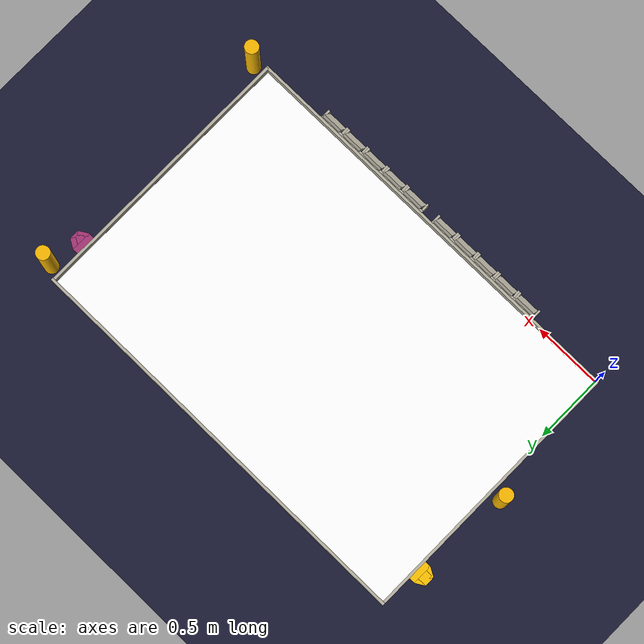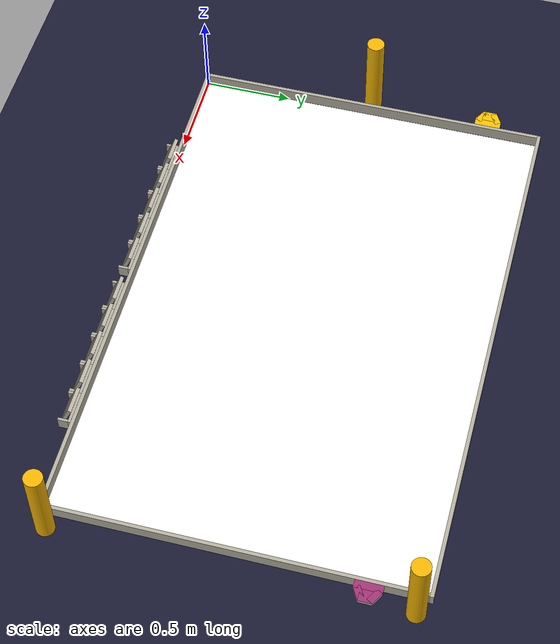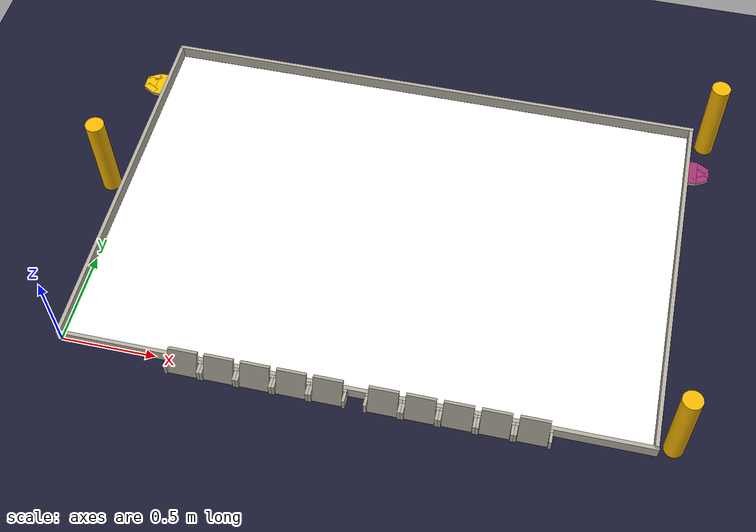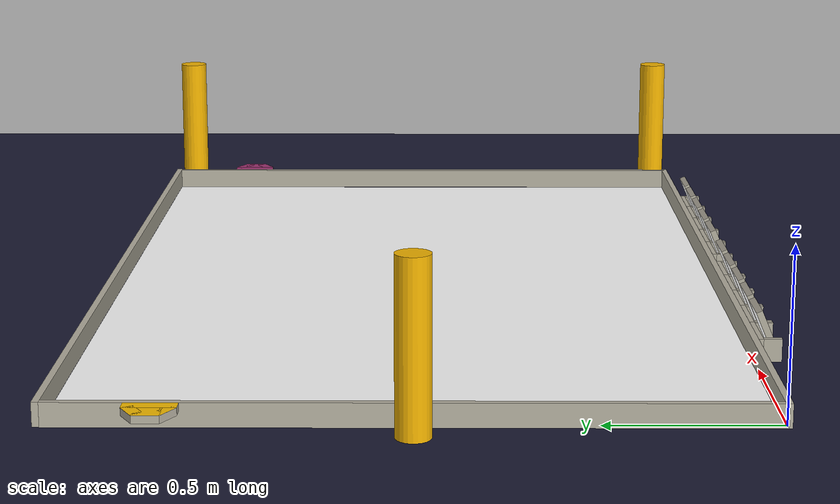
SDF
<sdf version="1.4">
 <world name="eurobot_2022">
  <plugin filename="gz-sim-physics-system" name="gz::sim::systems::Physics"/>
  <plugin filename="gz-sim-user-commands-system" name="gz::sim::systems::UserCommands"/>
  <plugin filename="gz-sim-scene-broadcaster-system" name="gz::sim::systems::SceneBroadcaster"/>
  <physics name="1ms" type="ignored">
   <max_step_size>0.01</max_step_size>
   <real_time_factor>1.0</real_time_factor>
  </physics>
  <plugin filename="gz-sim-sensors-system" name="gz::sim::systems::Sensors">
   <render_engine>ogre2</render_engine>
  </plugin>
  <plugin filename="gz-sim-imu-system" name="gz::sim::systems::Imu"/>
  <plugin filename="gz-sim-contact-system" name="gz::sim::systems::Contact"/>
  <scene><ambient>0.4 0.4 0.4 1</ambient><shadows>false</shadows></scene>
  <light type="directional" name="light1">
   <pose>1.5 1 50 0 0 0</pose>
   <diffuse>0.5 0.5 0.5 1</diffuse>
   <specular>1 1 1 0</specular>
   <direction>1 0 0.5</direction>
  </light>
  <light type="directional" name="light2">
   <pose>1.5 1 50 0 0 0</pose>
   <diffuse>0.5 0.5 0.5 1</diffuse>
   <specular>1 1 1 0</specular>
   <direction>1 0 -0.5</direction>
  </light>
  <model name="ground_plane">
   <static>true</static>
   <link name="ground_link">
    <collision name="collision1"><geometry><plane><normal>0 0 1</normal></plane></geometry></collision>
    <visual name="visual1">
     <geometry><plane><normal>0 0 1</normal><size>100 100</size></plane></geometry>
     <material>
      <ambient>0.1 0.1 0.1 0</ambient>
      <diffuse>0.1 0.1 0.2 0</diffuse>
      <specular>0 0 0 0</specular>
      <emissive>0 0 0 0</emissive>
     </material>
    </visual>
   </link>
  </model>
  <include>
   <name>playground</name>
   <uri>model://eurobot_playground_22</uri>
   <pose>1.5 1.0 -0.001 0 0 0</pose>
  </include>
  <include>
   <static>true</static>
   <name>sample_support_yellow</name>
   <uri>model://eurobot_22/sample_support_yellow</uri>
   <pose>-0.0415 1.7 0.059 0 0 3.14159265</pose>
  </include>
  <include>
   <static>true</static>
   <name>sample_support_purple</name>
   <uri>model://eurobot_22/sample_support_purple</uri>
   <pose>3.0415 1.7 0.059 0 0 0</pose>
  </include>
  <include>
   <static>false</static>
   <name>excavation_square_yellow_1</name>
   <uri>model://eurobot_22/excavation_square_yellow</uri>
   <pose>0.6675 -0.0176 0.035 0 0 0</pose>
  </include>
  <include>
   <static>false</static>
   <name>excavation_square_yellow_2</name>
   <uri>model://eurobot_22/excavation_square_yellow</uri>
   <pose>0.8525 -0.0176 0.035 0 0 0</pose>
  </include>
  <include>
   <static>false</static>
   <name>excavation_square_x_1</name>
   <uri>model://eurobot_22/excavation_square_x</uri>
   <pose>1.0375 -0.0176 0.035 0 0 0</pose>
  </include>
  <include>
   <static>false</static>
   <name>excavation_square_purple_1</name>
   <uri>model://eurobot_22/excavation_square_purple</uri>
   <pose>1.2225 -0.0176 0.035 0 0 0</pose>
  </include>
  <include>
   <static>false</static>
   <name>excavation_square_yellow_3</name>
   <uri>model://eurobot_22/excavation_square_yellow</uri>
   <pose>1.4075 -0.0176 0.035 0 0 0</pose>
  </include>
  <include>
   <static>false</static>
   <name>excavation_square_yellow_4</name>
   <uri>model://eurobot_22/excavation_square_yellow</uri>
   <pose>1.685 -0.0176 0.035 0 0 0</pose>
  </include>
  <include>
   <static>false</static>
   <name>excavation_square_purple_2</name>
   <uri>model://eurobot_22/excavation_square_purple</uri>
   <pose>1.870 -0.0176 0.035 0 0 0</pose>
  </include>
  <include>
   <static>false</static>
   <name>excavation_square_x_2</name>
   <uri>model://eurobot_22/excavation_square_x</uri>
   <pose>2.055 -0.0176 0.035 0 0 0</pose>
  </include>
  <include>
   <static>false</static>
   <name>excavation_square_purple_3</name>
   <uri>model://eurobot_22/excavation_square_purple</uri>
   <pose>2.240 -0.0176 0.035 0 0 0</pose>
  </include>
  <include>
   <static>false</static>
   <name>excavation_square_purple_4</name>
   <uri>model://eurobot_22/excavation_square_purple</uri>
   <pose>2.425 -0.0176 0.035 0 0 0</pose>
  </include>
  <model name="wall1">
   <static>true</static>
   <pose>1.502 0 0.035 0 0 0</pose>
   <link name="body">
    <collision name="collision1"><geometry><box><size>3.04 0.02 0.07</size></box></geometry></collision>
    <visual name="visual1">
     <geometry><box><size>3.04 0.02 0.07</size></box></geometry>
     <material>
      <ambient>0.71 0.69 0.63 1.0</ambient>
      <diffuse>0.71 0.69 0.63 1.0</diffuse>
      <specular>0.1 0.1 0.1 1</specular>
      <emissive>0 0 0 0</emissive>
     </material>
    </visual>
   </link>
  </model>
  <model name="wall2">
   <static>true</static>
   <pose>1.502 2.01 0.035 0 0 0</pose>
   <link name="body">
    <collision name="collision1"><geometry><box><size>3.04 0.02 0.07</size></box></geometry></collision>
    <visual name="visual1">
     <geometry><box><size>3.04 0.02 0.07</size></box></geometry>
     <material>
      <ambient>0.71 0.69 0.63 1.0</ambient>
      <diffuse>0.71 0.69 0.63 1.0</diffuse>
      <specular>0.1 0.1 0.1 1</specular>
      <emissive>0 0 0 0</emissive>
     </material>
    </visual>
   </link>
  </model>
  <model name="wall3">
   <static>true</static>
   <pose>3.01 1.0 0.035 0 0 0</pose>
   <link name="body">
    <collision name="collision1"><geometry><box><size>0.02 2.0 0.07</size></box></geometry></collision>
    <visual name="visual1">
     <geometry><box><size>0.02 2 0.07</size></box></geometry>
     <material>
      <ambient>0.71 0.69 0.63 1.0</ambient>
      <diffuse>0.71 0.69 0.63 1.0</diffuse>
      <specular>0.1 0.1 0.1 1</specular>
      <emissive>0 0 0 0</emissive>
     </material>
    </visual>
   </link>
  </model>
  <model name="wall4">
   <static>true</static>
   <pose>-0.01 1.0 0.035 0 0 0</pose>
   <link name="body">
    <collision name="collision1"><geometry><box><size>0.02 2.0 0.07</size></box></geometry></collision>
    <visual name="visual1">
     <geometry><box><size>0.02 2 0.07</size></box></geometry>
     <material>
      <ambient>0.71 0.69 0.63 1.0</ambient>
      <diffuse>0.71 0.69 0.63 1.0</diffuse>
      <specular>0.1 0.1 0.1 1</specular>
      <emissive>0 0 0 0</emissive>
     </material>
    </visual>
   </link>
  </model>
  <model name="landmark2">
   <pose>-0.094 1.0 0.25 0 0 0</pose>
   <static>true</static>
   <link name="link">
    <collision name="collision">
     <geometry><cylinder><length>0.5</length><radius>0.05</radius></cylinder></geometry>
     <laser_retro>20.0</laser_retro>
    </collision>
    <visual name="visual">
     <geometry><cylinder><length>0.5</length><radius>0.05</radius></cylinder></geometry>
     <material>
      <ambient>0.96 0.71 0.0 1</ambient>
      <diffuse>0.96 0.71 0.0 1</diffuse>
      <specular>0 0 0 0</specular>
      <emissive>0 0 0 0</emissive>
     </material>
    </visual>
   </link>
  </model>
  <model name="landmark4">
   <pose>3.094 0.05 0.25 0 0 0</pose>
   <static>true</static>
   <link name="link">
    <collision name="collision">
     <geometry><cylinder><length>0.5</length><radius>0.05</radius></cylinder></geometry>
     <laser_retro>40.0</laser_retro>
    </collision>
    <visual name="visual">
     <geometry><cylinder><length>0.5</length><radius>0.05</radius></cylinder></geometry>
     <material>
      <ambient>0.96 0.71 0.0 1</ambient>
      <diffuse>0.96 0.71 0.0 1</diffuse>
      <specular>0 0 0 0</specular>
      <emissive>0 0 0 0</emissive>
     </material>
    </visual>
   </link>
  </model>
  <model name="landmark6">
   <pose>3.094 1.95 0.25 0 0 0</pose>
   <static>true</static>
   <link name="link">
    <collision name="collision">
     <geometry><cylinder><length>0.5</length><radius>0.05</radius></cylinder></geometry>
     <laser_retro>60.0</laser_retro>
    </collision>
    <visual name="visual">
     <geometry><cylinder><length>0.5</length><radius>0.05</radius></cylinder></geometry>
     <material>
      <ambient>0.96 0.71 0.0 1</ambient>
      <diffuse>0.96 0.71 0.0 1</diffuse>
      <specular>0 0 0 0</specular>
      <emissive>0 0 0 0</emissive>
     </material>
    </visual>
   </link>
  </model>
 </world>
</sdf>

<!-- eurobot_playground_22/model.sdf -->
<sdf version="1.6">
  <model name="Eurobot Playground Model">
    <static>true</static>
  <link name="plane">
      <collision name="plane_collision">
        <geometry>
          <box>
            <size>3 2 0.0001</size>
          </box>
        </geometry>
      </collision>
      <visual name="plane_visual">
        <geometry>
          <box>
            <size>3 2 0.0001</size>
          </box>
        </geometry>
        <material>
          <ambient>1 1 1 1</ambient>
          <diffuse>1 1 1 1</diffuse>
          <specular>0.1 0.1 0.1 1</specular>
          <pbr>
            <metal>
              <albedo_map>materials/textures/vinyle-table-2022_large.png</albedo_map>
              <roughness>1.0</roughness>
              <metalness>0.0</metalness>
            </metal>
          </pbr>
        </material>
      </visual>
    </link>

  </model>
</sdf>

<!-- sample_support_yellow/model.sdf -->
<sdf version="1.6">
  <model name="sample_support_yellow">
  <static>false</static>
  <link name="base_plate">
      <collision name="base_plate_collision_1">
        <pose>0 0 0 0 0 0</pose>
        <geometry>
          <box><size>0.04295 0.150 0.022</size></box>
        </geometry>
      </collision>
      <collision name="base_plate_collision_2">
        <pose>0.05395 0 0 0 0 0</pose>
        <geometry>
          <box><size>0.06495 0.075 0.022</size></box>
        </geometry>
      </collision>
      <collision name="base_plate_collision_3">
        <pose>0.044575 0.04 0 0 0 2.61799387799</pose>
        <geometry>
          <box><size>0.075 0.0375 0.022</size></box>
        </geometry>
      </collision>
      <collision name="base_plate_collision_4">
        <pose>0.044575 -0.04 0 0 0 -2.61799387799</pose>
        <geometry>
          <box><size>0.075 0.0375 0.022</size></box>
        </geometry>
      </collision>
      <visual name="base_plate_visual_1">
        <pose>0 0 0 0 0 0</pose>
        <geometry>
          <box><size>0.04295 0.150 0.022</size></box>
        </geometry>
        <material>
          <ambient>0.71 0.69 0.63 1.0</ambient>
          <diffuse>0.71 0.69 0.63 1.0</diffuse>
          <specular>0.1 0.1 0.1 1</specular>
          <emissive>0 0 0 0</emissive>
        </material>
      </visual>
      <visual name="base_plate_1_color_cap">
        <pose>0 0 0.011 0 0 0</pose>
        <geometry>
          <box>
            <size>0.04295 0.150 0.0001</size>
          </box>
        </geometry>
       <material>
            <ambient>0.98 0.75 0.00 1</ambient>
            <diffuse>0.98 0.75 0.00 1</diffuse>
            <specular>0.05 0.05 0.05 1</specular>
       </material>
      </visual>
      <visual name="base_plate_visual_2">
        <pose>0.05395 0 0 0 0 0</pose>
        <geometry>
          <box><size>0.06495 0.075 0.022</size></box>
        </geometry>
        <material>
          <ambient>0.71 0.69 0.63 1.0</ambient>
          <diffuse>0.71 0.69 0.63 1.0</diffuse>
          <specular>0.1 0.1 0.1 1</specular>
          <emissive>0 0 0 0</emissive>
        </material>
      </visual>
      <visual name="base_plate_2_color_cap">
        <pose>0.05395 0 0.011 0 0 0</pose>
        <geometry>
          <box>
            <size>0.06495 0.075 0.0001</size>
          </box>
        </geometry>
       <material>
            <ambient>0.98 0.75 0.00 1</ambient>
            <diffuse>0.98 0.75 0.00 1</diffuse>
            <specular>0.05 0.05 0.05 1</specular>
       </material>
      </visual>
      <visual name="base_plate_visual_3">
        <pose>0.044575 0.04 0 0 0 2.61799387799</pose>
        <geometry>
          <box><size>0.075 0.0375 0.022</size></box>
        </geometry>
        <material>
          <ambient>0.71 0.69 0.63 1.0</ambient>
          <diffuse>0.71 0.69 0.63 1.0</diffuse>
          <specular>0.1 0.1 0.1 1</specular>
          <emissive>0 0 0 0</emissive>
        </material>
      </visual>
      <visual name="base_plate_3_color_cap">
        <pose>0.044575 0.04 0.011 0 0 2.61799387799</pose>
        <geometry>
          <box>
            <size>0.075 0.0375 0.0001</size>
          </box>
        </geometry>
       <material>
            <ambient>0.98 0.75 0.00 1</ambient>
            <diffuse>0.98 0.75 0.00 1</diffuse>
            <specular>0.05 0.05 0.05 1</specular>
       </material>
      </visual>
      <visual name="base_plate_visual_4">
        <pose>0.044575 -0.04 0 0 0 -2.61799387799</pose>
        <geometry>
          <box><size>0.075 0.0375 0.022</size></box>
        </geometry>
        <material>
          <ambient>0.71 0.69 0.63 1.0</ambient>
          <diffuse>0.71 0.69 0.63 1.0</diffuse>
          <specular>0.1 0.1 0.1 1</specular>
          <emissive>0 0 0 0</emissive>
        </material>
      </visual>
      <visual name="base_plate_4_color_cap">
        <pose>0.044575 -0.04 0.011 0 0 -2.61799387799</pose>
        <geometry>
          <box>
            <size>0.075 0.0375 0.0001</size>
          </box>
        </geometry>
       <material>
            <ambient>0.98 0.75 0.00 1</ambient>
            <diffuse>0.98 0.75 0.00 1</diffuse>
            <specular>0.05 0.05 0.05 1</specular>
       </material>
      </visual>
      <inertial>
        <mass>0.1</mass>
        <inertia>
          <ixx>0.000703</ixx><ixy>0</ixy><ixz>0</ixz>
          <iyy>0.000703</iyy><iyz>0</iyz>
          <izz>0.000703</izz>
        </inertia>
      </inertial>
    </link>
  </model>
</sdf>

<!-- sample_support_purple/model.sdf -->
<sdf version="1.6">
  <model name="sample_support_yellow">
  <static>false</static>
  <link name="base_plate">
      <collision name="base_plate_collision_1">
        <pose>0 0 0 0 0 0</pose>
        <geometry>
          <box><size>0.04295 0.150 0.022</size></box>
        </geometry>
      </collision>
      <collision name="base_plate_collision_2">
        <pose>0.05395 0 0 0 0 0</pose>
        <geometry>
          <box><size>0.06495 0.075 0.022</size></box>
        </geometry>
      </collision>
      <collision name="base_plate_collision_3">
        <pose>0.044575 0.04 0 0 0 2.61799387799</pose>
        <geometry>
          <box><size>0.075 0.0375 0.022</size></box>
        </geometry>
      </collision>
      <collision name="base_plate_collision_4">
        <pose>0.044575 -0.04 0 0 0 -2.61799387799</pose>
        <geometry>
          <box><size>0.075 0.0375 0.022</size></box>
        </geometry>
      </collision>
      <visual name="base_plate_visual_1">
        <pose>0 0 0 0 0 0</pose>
        <geometry>
          <box><size>0.04295 0.150 0.022</size></box>
        </geometry>
        <material>
          <ambient>0.71 0.69 0.63 1.0</ambient>
          <diffuse>0.71 0.69 0.63 1.0</diffuse>
          <specular>0.1 0.1 0.1 1</specular>
          <emissive>0 0 0 0</emissive>
        </material>
      </visual>
      <visual name="base_plate_1_color_cap">
        <pose>0 0 0.011 0 0 0</pose>
        <geometry>
          <box>
            <size>0.04295 0.150 0.0001</size>
          </box>
        </geometry>
        <material>
          <ambient>0.63 0.20 0.45 1</ambient>
          <diffuse>0.63 0.20 0.45 1</diffuse>
          <specular>0.05 0.05 0.05 1</specular>
          <emissive>0 0 0 0</emissive>
        </material>
      </visual>
      <visual name="base_plate_visual_2">
        <pose>0.05395 0 0 0 0 0</pose>
        <geometry>
          <box><size>0.06495 0.075 0.022</size></box>
        </geometry>
        <material>
          <ambient>0.71 0.69 0.63 1.0</ambient>
          <diffuse>0.71 0.69 0.63 1.0</diffuse>
          <specular>0.1 0.1 0.1 1</specular>
          <emissive>0 0 0 0</emissive>
        </material>
      </visual>
      <visual name="base_plate_2_color_cap">
        <pose>0.05395 0 0.011 0 0 0</pose>
        <geometry>
          <box>
            <size>0.06495 0.075 0.0001</size>
          </box>
        </geometry>
        <material>
          <ambient>0.63 0.20 0.45 1</ambient>
          <diffuse>0.63 0.20 0.45 1</diffuse>
          <specular>0.05 0.05 0.05 1</specular>
          <emissive>0 0 0 0</emissive>
        </material>
      </visual>
      <visual name="base_plate_visual_3">
        <pose>0.044575 0.04 0 0 0 2.61799387799</pose>
        <geometry>
          <box><size>0.075 0.0375 0.022</size></box>
        </geometry>
        <material>
          <ambient>0.71 0.69 0.63 1.0</ambient>
          <diffuse>0.71 0.69 0.63 1.0</diffuse>
          <specular>0.1 0.1 0.1 1</specular>
          <emissive>0 0 0 0</emissive>
        </material>
      </visual>
      <visual name="base_plate_3_color_cap">
        <pose>0.044575 0.04 0.011 0 0 2.61799387799</pose>
        <geometry>
          <box>
            <size>0.075 0.0375 0.0001</size>
          </box>
        </geometry>
        <material>
          <ambient>0.63 0.20 0.45 1</ambient>
          <diffuse>0.63 0.20 0.45 1</diffuse>
          <specular>0.05 0.05 0.05 1</specular>
          <emissive>0 0 0 0</emissive>
        </material>
      </visual>
      <visual name="base_plate_visual_4">
        <pose>0.044575 -0.04 0 0 0 -2.61799387799</pose>
        <geometry>
          <box><size>0.075 0.0375 0.022</size></box>
        </geometry>
        <material>
          <ambient>0.71 0.69 0.63 1.0</ambient>
          <diffuse>0.71 0.69 0.63 1.0</diffuse>
          <specular>0.1 0.1 0.1 1</specular>
          <emissive>0 0 0 0</emissive>
        </material>
      </visual>
      <visual name="base_plate_4_color_cap">
        <pose>0.044575 -0.04 0.011 0 0 -2.61799387799</pose>
        <geometry>
          <box>
            <size>0.075 0.0375 0.0001</size>
          </box>
        </geometry>
        <material>
          <ambient>0.63 0.20 0.45 1</ambient>
          <diffuse>0.63 0.20 0.45 1</diffuse>
          <specular>0.05 0.05 0.05 1</specular>
          <emissive>0 0 0 0</emissive>
        </material>
      </visual>
      <inertial>
        <mass>0.1</mass>
        <inertia>
          <ixx>0.000703</ixx><ixy>0</ixy><ixz>0</ixz>
          <iyy>0.000703</iyy><iyz>0</iyz>
          <izz>0.000703</izz>
        </inertia>
      </inertial>
    </link>
  </model>
</sdf>

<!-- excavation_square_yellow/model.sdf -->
<sdf version="1.6">
    <model name="excavation_square_yellow">
        <static>false</static>
        <link name="excavation_square_yellow_base_link">
            <collision name="excavation_square_yellow_1_collision_1">
                <pose>0 0 0 0 0 0</pose>
                <geometry>
                    <box>
                        <size>0.185 0.015 0.07</size>
                    </box>
                </geometry>
            </collision>
            <collision name="excavation_square_yellow_1_collision_2">
                <pose>0.085 -0.035 0 0 0 0</pose>
                <geometry>
                    <box>
                        <size>0.015 0.055 0.07</size>
                    </box>
                </geometry>
            </collision>
            <collision name="excavation_suqare_yellow_1_collision_3">
                <pose>-0.085  -0.035 0 0 0 0</pose>
                <geometry>
                    <box>
                        <size>0.015 0.055 0.07</size>
                    </box>
                </geometry>
            </collision>
            <inertial>
                <inertia>
                    <ixx>0.01</ixx>
                    <ixy>0</ixy>
                    <ixz>0</ixz>
                    <iyy>0.01</iyy>
                    <iyz>0</iyz>
                    <izz>0.01</izz>
                </inertia>
                <mass>0.1</mass>
            </inertial>
            <visual name="excavation_square_yellow_1_visual_1">
                <pose>0 0 0 0 0 0</pose>
                <geometry>
                    <box>
                        <size>0.185 0.015 0.07</size>
                    </box>
                </geometry>
                <material>
                    <ambient>0.71 0.69 0.63 1.0</ambient>
                    <diffuse>0.71 0.69 0.63 1.0</diffuse>
                    <specular>0.1 0.1 0.1 1</specular>
                    <emissive>0 0 0 0</emissive>
                </material>
            </visual>
            <visual name="excavation_square_yellow_1_visual_2">
                <pose>0.085 -0.035 0 0 0 0</pose>
                <geometry>
                    <box>
                        <size>0.015 0.055 0.07</size>
                    </box>
                </geometry>
                <material>
                    <ambient>0.71 0.69 0.63 1.0</ambient>
                    <diffuse>0.71 0.69 0.63 1.0</diffuse>
                    <specular>0.1 0.1 0.1 1</specular>
                    <emissive>0 0 0 0</emissive>
                </material>
            </visual>
            <visual name="excavation_square_yellow_1_visual_3">
                <pose>-0.085 -0.035 0 0 0 0</pose>
                <geometry>
                    <box>
                        <size>0.015 0.055 0.07</size>
                    </box>
                </geometry>
                <material>
                    <ambient>0.71 0.69 0.63 1.0</ambient>
                    <diffuse>0.71 0.69 0.63 1.0</diffuse>
                    <specular>0.1 0.1 0.1 1</specular>
                    <emissive>0 0 0 0</emissive>
                </material>
            </visual>
        </link>
        <link name="excavation_square_yellow_image_holder">
            <pose>0 -0.0235 0.044 2.74016692563 0 0</pose>
            <collision name="excavation_square_yellow_image_holder_collision">
                <geometry>
                    <box>
                        <size>0.15 0.02 0.15</size>
                    </box>
                </geometry>
            </collision>
            <inertial>
                <inertia>
                    <ixx>0.01</ixx>
                    <ixy>0</ixy>
                    <ixz>0</ixz>
                    <iyy>0.01</iyy>
                    <iyz>0</iyz>
                    <izz>0.01</izz>
                </inertia>
                <mass>0.1</mass>
            </inertial>
            <visual name="excavation_square_yellow_image_holder_visual">
                <geometry>
                    <box>
                        <size>0.15 0.02 0.15</size>
                    </box>
                </geometry>
                <material>
                    <ambient>0.71 0.69 0.63 1.0</ambient>
                    <diffuse>0.71 0.69 0.63 1.0</diffuse>
                    <specular>0.1 0.1 0.1 1</specular>
                    <emissive>0 0 0 0</emissive>
                </material>
            </visual>
            <visual name="excavation_square_yellow_image_holder_texture">
                <pose>0 -0.01001 0 0 0 0</pose>
                <geometry>
                    <box>
                        <size>0.15 0.0001 0.15</size>
                    </box>
                </geometry>
                <material>
                    <ambient>1 1 1 1</ambient>
                    <diffuse>1 1 1 1</diffuse>
                    <specular>0.1 0.1 0.1 1</specular>
                    <pbr>
                        <metal>
                            <albedo_map>materials/textures/vinyle_excavation_yellow.png</albedo_map>
                            <roughness>1.0</roughness>
                            <metalness>0.0</metalness>
                        </metal>
                    </pbr>
                </material>
            </visual>

        </link>
        <joint name="image_holder_revolute" type="revolute">
            <parent>excavation_square_yellow_base_link</parent>
            <child>excavation_square_yellow_image_holder</child>
            <pose>0 0 0.07 0 0 0</pose>
            <axis>
                <xyz>1 0 0</xyz>
                <dynamics>
                    <damping>0.02</damping>
                </dynamics>
            </axis>
        </joint>
        <joint name="base_to_world" type="fixed">
            <parent>world</parent>
            <child>excavation_square_yellow_base_link</child>
            <pose>0 0 0 0 0 0</pose>
        </joint>
    </model>
</sdf>

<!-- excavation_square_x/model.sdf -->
<sdf version="1.6">
    <model name="excavation_square_x">
        <static>false</static>
        <link name="excavation_square_x_base_link">
            <collision name="excavation_square_x_1_collision_1">
                <pose>0 0 0 0 0 0</pose>
                <geometry>
                    <box>
                        <size>0.185 0.015 0.07</size>
                    </box>
                </geometry>
            </collision>
            <collision name="excavation_square_x_1_collision_2">
                <pose>0.085 -0.035 0 0 0 0</pose>
                <geometry>
                    <box>
                        <size>0.015 0.055 0.07</size>
                    </box>
                </geometry>
            </collision>
            <collision name="excavation_suqare_x_1_collision_3">
                <pose>-0.085  -0.035 0 0 0 0</pose>
                <geometry>
                    <box>
                        <size>0.015 0.055 0.07</size>
                    </box>
                </geometry>
            </collision>
            <inertial>
                <inertia>
                    <ixx>0.01</ixx>
                    <ixy>0</ixy>
                    <ixz>0</ixz>
                    <iyy>0.01</iyy>
                    <iyz>0</iyz>
                    <izz>0.01</izz>
                </inertia>
                <mass>0.1</mass>
            </inertial>
            <visual name="excavation_square_x_1_visual_1">
                <pose>0 0 0 0 0 0</pose>
                <geometry>
                    <box>
                        <size>0.185 0.015 0.07</size>
                    </box>
                </geometry>
                <material>
                    <ambient>0.71 0.69 0.63 1.0</ambient>
                    <diffuse>0.71 0.69 0.63 1.0</diffuse>
                    <specular>0.1 0.1 0.1 1</specular>
                    <emissive>0 0 0 0</emissive>
                </material>
            </visual>
            <visual name="excavation_square_x_1_visual_2">
                <pose>0.085 -0.035 0 0 0 0</pose>
                <geometry>
                    <box>
                        <size>0.015 0.055 0.07</size>
                    </box>
                </geometry>
                <material>
                    <ambient>0.71 0.69 0.63 1.0</ambient>
                    <diffuse>0.71 0.69 0.63 1.0</diffuse>
                    <specular>0.1 0.1 0.1 1</specular>
                    <emissive>0 0 0 0</emissive>
                </material>
            </visual>
            <visual name="excavation_square_x_1_visual_3">
                <pose>-0.085 -0.035 0 0 0 0</pose>
                <geometry>
                    <box>
                        <size>0.015 0.055 0.07</size>
                    </box>
                </geometry>
                <material>
                    <ambient>0.71 0.69 0.63 1.0</ambient>
                    <diffuse>0.71 0.69 0.63 1.0</diffuse>
                    <specular>0.1 0.1 0.1 1</specular>
                    <emissive>0 0 0 0</emissive>
                </material>
            </visual>
        </link>
        <link name="excavation_square_x_image_holder">
            <pose>0 -0.0235 0.044 2.74016692563 0 0</pose>
            <collision name="excavation_square_x_image_holder_collision">
                <geometry>
                    <box>
                        <size>0.15 0.02 0.15</size>
                    </box>
                </geometry>
            </collision>
            <inertial>
                <inertia>
                    <ixx>0.01</ixx>
                    <ixy>0</ixy>
                    <ixz>0</ixz>
                    <iyy>0.01</iyy>
                    <iyz>0</iyz>
                    <izz>0.01</izz>
                </inertia>
                <mass>0.1</mass>
            </inertial>
            <visual name="excavation_square_x_image_holder_visual">
                <geometry>
                    <box>
                        <size>0.15 0.02 0.15</size>
                    </box>
                </geometry>
                <material>
                    <ambient>0.71 0.69 0.63 1.0</ambient>
                    <diffuse>0.71 0.69 0.63 1.0</diffuse>
                    <specular>0.1 0.1 0.1 1</specular>
                    <emissive>0 0 0 0</emissive>
                </material>
            </visual>
            <visual name="excavation_square_x_image_holder_texture">
                <pose>0 -0.01001 0 0 0 0</pose>
                <geometry>
                    <box>
                        <size>0.15 0.0001 0.15</size>
                    </box>
                </geometry>
                <material>
                    <ambient>1 1 1 1</ambient>
                    <diffuse>1 1 1 1</diffuse>
                    <specular>0.1 0.1 0.1 1</specular>
                    <pbr>
                        <metal>
                            <albedo_map>materials/textures/vinyle_excavation_x.png</albedo_map>
                            <roughness>1.0</roughness>
                            <metalness>0.0</metalness>
                        </metal>
                    </pbr>
                </material>
            </visual>

        </link>
        <joint name="image_holder_revolute" type="revolute">
            <parent>excavation_square_x_base_link</parent>
            <child>excavation_square_x_image_holder</child>
            <pose>0 0 0.07 0 0 0</pose>
            <axis>
                <xyz>1 0 0</xyz>
                <dynamics>
                    <damping>0.02</damping>
                </dynamics>
            </axis>
        </joint>
        <joint name="base_to_world" type="fixed">
            <parent>world</parent>
            <child>excavation_square_x_base_link</child>
            <pose>0 0 0 0 0 0</pose>
        </joint>
    </model>
</sdf>

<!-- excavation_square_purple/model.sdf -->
<sdf version="1.6">
    <model name="excavation_square_purple">
        <static>false</static>
        <link name="excavation_square_purple_base_link">
            <collision name="excavation_square_purple_1_collision_1">
                <pose>0 0 0 0 0 0</pose>
                <geometry>
                    <box>
                        <size>0.185 0.015 0.07</size>
                    </box>
                </geometry>
            </collision>
            <collision name="excavation_square_purple_1_collision_2">
                <pose>0.085 -0.035 0 0 0 0</pose>
                <geometry>
                    <box>
                        <size>0.015 0.055 0.07</size>
                    </box>
                </geometry>
            </collision>
            <collision name="excavation_suqare_purple_1_collision_3">
                <pose>-0.085  -0.035 0 0 0 0</pose>
                <geometry>
                    <box>
                        <size>0.015 0.055 0.07</size>
                    </box>
                </geometry>
            </collision>
            <inertial>
                <inertia>
                    <ixx>0.01</ixx>
                    <ixy>0</ixy>
                    <ixz>0</ixz>
                    <iyy>0.01</iyy>
                    <iyz>0</iyz>
                    <izz>0.01</izz>
                </inertia>
                <mass>0.1</mass>
            </inertial>
            <visual name="excavation_square_purple_1_visual_1">
                <pose>0 0 0 0 0 0</pose>
                <geometry>
                    <box>
                        <size>0.185 0.015 0.07</size>
                    </box>
                </geometry>
                <material>
                    <ambient>0.71 0.69 0.63 1.0</ambient>
                    <diffuse>0.71 0.69 0.63 1.0</diffuse>
                    <specular>0.1 0.1 0.1 1</specular>
                    <emissive>0 0 0 0</emissive>
                </material>
            </visual>
            <visual name="excavation_square_purple_1_visual_2">
                <pose>0.085 -0.035 0 0 0 0</pose>
                <geometry>
                    <box>
                        <size>0.015 0.055 0.07</size>
                    </box>
                </geometry>
                <material>
                    <ambient>0.71 0.69 0.63 1.0</ambient>
                    <diffuse>0.71 0.69 0.63 1.0</diffuse>
                    <specular>0.1 0.1 0.1 1</specular>
                    <emissive>0 0 0 0</emissive>
                </material>
            </visual>
            <visual name="excavation_square_purple_1_visual_3">
                <pose>-0.085 -0.035 0 0 0 0</pose>
                <geometry>
                    <box>
                        <size>0.015 0.055 0.07</size>
                    </box>
                </geometry>
                <material>
                    <ambient>0.71 0.69 0.63 1.0</ambient>
                    <diffuse>0.71 0.69 0.63 1.0</diffuse>
                    <specular>0.1 0.1 0.1 1</specular>
                    <emissive>0 0 0 0</emissive>
                </material>
            </visual>
        </link>
        <link name="excavation_square_purple_image_holder">
            <pose>0 -0.0235 0.044 2.74016692563 0 0</pose>
            <collision name="excavation_square_purple_image_holder_collision">
                <geometry>
                    <box>
                        <size>0.15 0.02 0.15</size>
                    </box>
                </geometry>
            </collision>
            <inertial>
                <inertia>
                    <ixx>0.01</ixx>
                    <ixy>0</ixy>
                    <ixz>0</ixz>
                    <iyy>0.01</iyy>
                    <iyz>0</iyz>
                    <izz>0.01</izz>
                </inertia>
                <mass>0.1</mass>
            </inertial>
            <visual name="excavation_square_purple_image_holder_visual">
                <geometry>
                    <box>
                        <size>0.15 0.02 0.15</size>
                    </box>
                </geometry>
                <material>
                    <ambient>0.71 0.69 0.63 1.0</ambient>
                    <diffuse>0.71 0.69 0.63 1.0</diffuse>
                    <specular>0.1 0.1 0.1 1</specular>
                    <emissive>0 0 0 0</emissive>
                </material>
            </visual>
            <visual name="excavation_square_purple_image_holder_texture">
                <pose>0 -0.01001 0 0 0 0</pose>
                <geometry>
                    <box>
                        <size>0.15 0.0001 0.15</size>
                    </box>
                </geometry>
                <material>
                    <ambient>1 1 1 1</ambient>
                    <diffuse>1 1 1 1</diffuse>
                    <specular>0.1 0.1 0.1 1</specular>
                    <pbr>
                        <metal>
                            <albedo_map>materials/textures/vinyle_excavation_purple.png</albedo_map>
                            <roughness>1.0</roughness>
                            <metalness>0.0</metalness>
                        </metal>
                    </pbr>
                </material>
            </visual>

        </link>
        <joint name="image_holder_revolute" type="revolute">
            <parent>excavation_square_purple_base_link</parent>
            <child>excavation_square_purple_image_holder</child>
            <pose>0 0 0.07 0 0 0</pose>
            <axis>
                <xyz>1 0 0</xyz>
                <dynamics>
                    <damping>0.02</damping>
                </dynamics>
            </axis>
        </joint>
        <joint name="base_to_world" type="fixed">
            <parent>world</parent>
            <child>excavation_square_purple_base_link</child>
            <pose>0 0 0 0 0 0</pose>
        </joint>
    </model>
</sdf>
